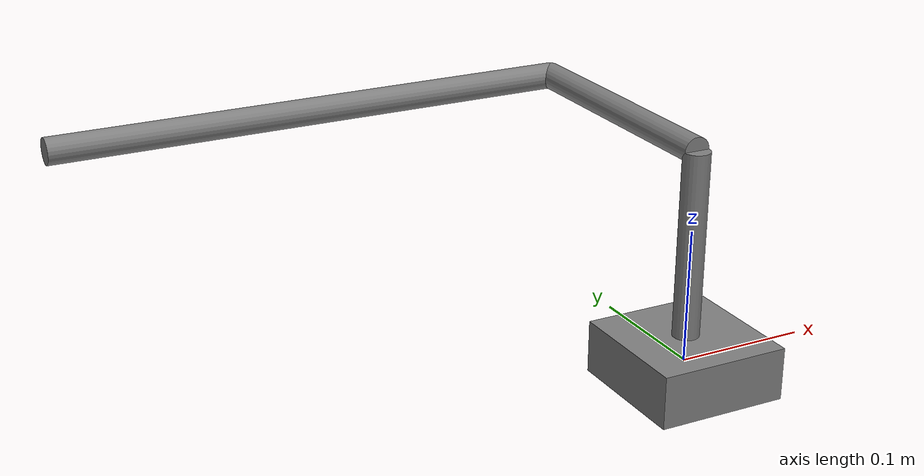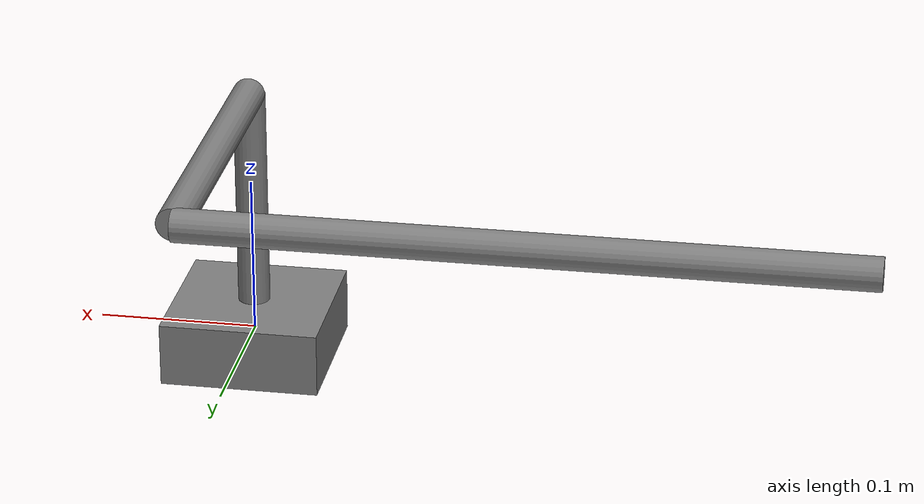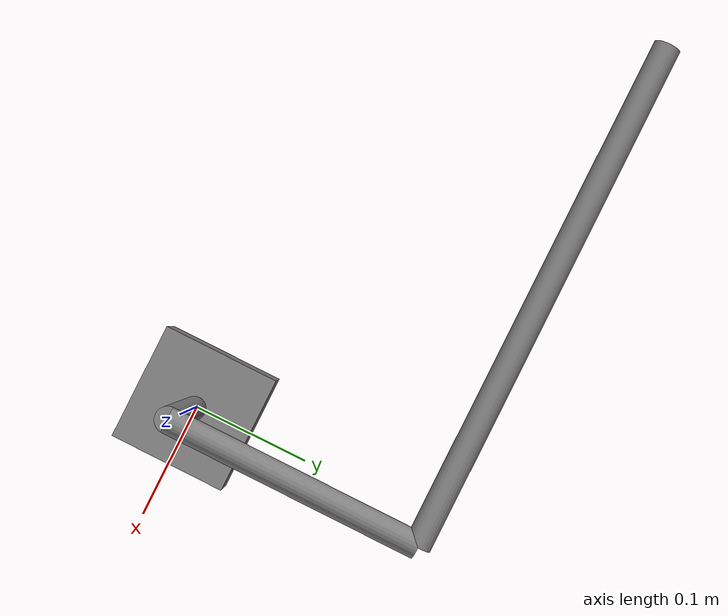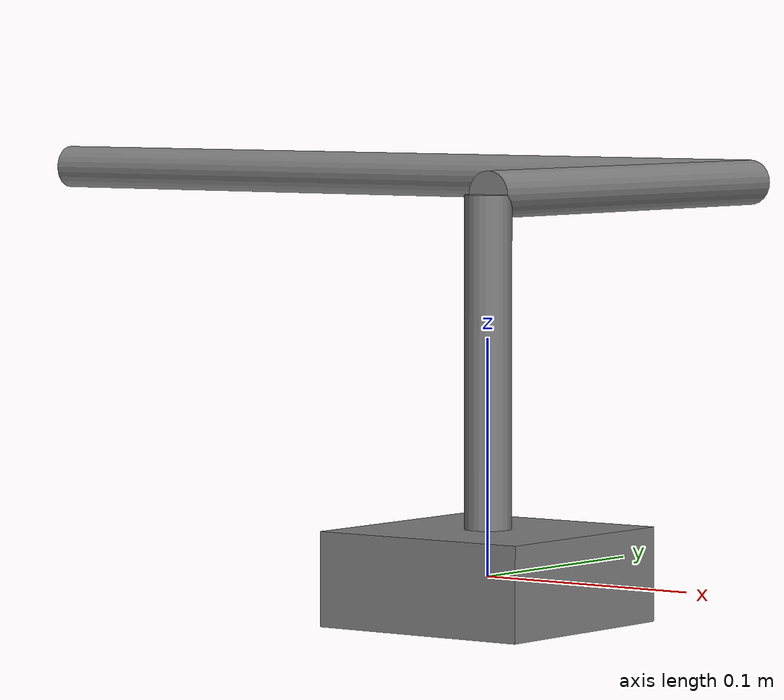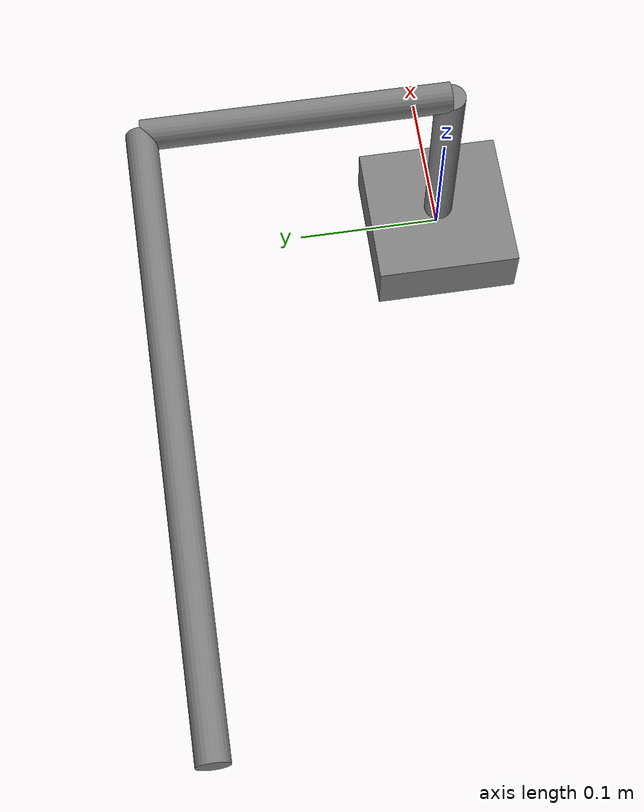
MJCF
<!-- ./simulate ../../../.devcontainer/ur5e_simple/ur5e_simple.xml -->

<mujoco model="ur5e_simple">
  <compiler angle="radian" autolimits="true"/>
  <option integrator="implicitfast"/>

  <default>
    <default class="ur5e">
      <joint type="hinge" damping="1"/>
      <general gaintype="fixed" biastype="affine" ctrlrange="-6.2831 6.2831" gainprm="2000" biasprm="0 -2000 -400"
        forcerange="-150 150"/>
        <default class="size3">
          <default class="size3_limited">
            <joint range="-3.1415 3.1415"/>
            <general ctrlrange="-3.1415 3.1415"/>
          </default>
        </default>
        <default class="size1">
          <general gainprm="500" biasprm="0 -500 -100" forcerange="-28 28"/>
        </default>
    </default>
  </default>

  <worldbody>
    <light pos="0 0 3"/>
    <body name="base" pos="0 0 0" childclass="ur5e" quat="1 0 0 1">
      <geom type="box" size="0.05 0.05 0.02"/>
      <body name="shoulder_link" pos="0 0 0.02" zaxis="0 -1 0">
        <joint name="shoulder_pan_joint" class="size3" axis="0 1 0"/>
        <geom type="cylinder" size="0.01" fromto="0 0 0 0 0.14 0" />
        <body name="upper_arm_link" pos="0 0.14 0" zaxis="1 0 0">
          <joint name="shoulder_lift_joint" class="size3"  axis="0 1 0"/>
          <geom type="cylinder" size="0.01" fromto="0 0 0 0 0 0.2"/>
          <body name="forearm_link" pos="0 0 0.2" zaxis="0 0 1">
            <joint name="elbow_joint" class="size3_limited" axis="1 0 0"/>
            <geom type="cylinder" size="0.01" fromto="0 0 0 0.4 0 0"/>
          </body>
        </body>
      </body>
    </body>
  </worldbody>

</mujoco>
